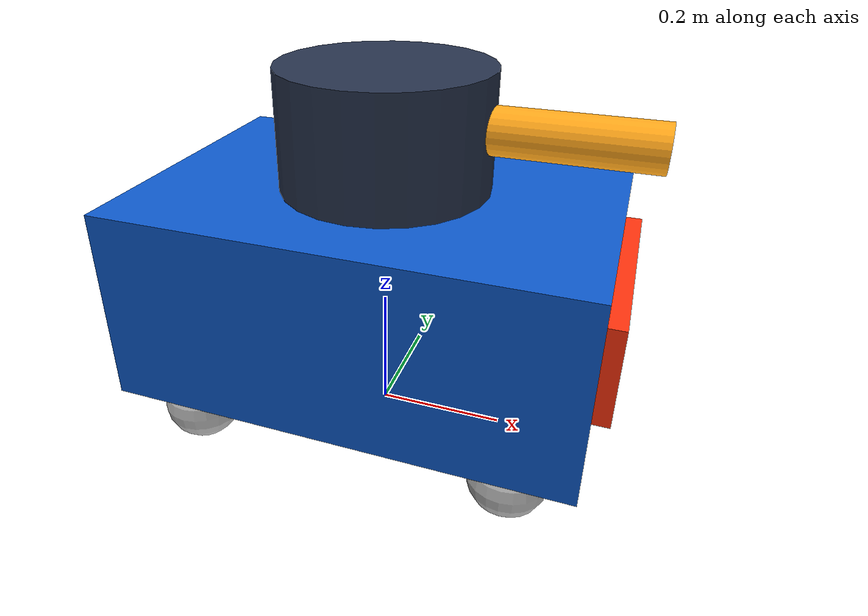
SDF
<?xml version='1.0' encoding='utf-8'?>
<sdf version="1.8">
  <!-- Generic force-driven physical chassis with actual four-line lidar observations. -->
  <model name="sentry">
    <pose>0 0 0 0 0 0</pose>
    <link name="base_link">
      <gravity>true</gravity>
      <inertial>
        <mass>15</mass>
        <inertia>
          <ixx>.35</ixx>
          <iyy>.60</iyy>
          <izz>.65</izz>
        </inertia>
        <pose>0 0 .20 0 0 0</pose>
      </inertial>
      <visual name="body">
        <pose>0 0 0.25 0 0 0</pose>
        <geometry>
          <box>
            <size>0.7 0.5 0.3</size>
          </box>
        </geometry>
        <material>
          <ambient>0.05 0.3 0.65 1</ambient>
          <diffuse>0.05 0.35 0.8 1</diffuse>
        </material>
      </visual>
      <visual name="front">
        <pose>0.36 0 0.25 0 0 0</pose>
        <geometry>
          <box>
            <size>0.03 0.35 0.15</size>
          </box>
        </geometry>
        <material>
          <ambient>1 0.2 0.05 1</ambient>
          <diffuse>1 0.2 0.05 1</diffuse>
        </material>
      </visual>
      <visual name="turret">
        <pose>0 0 0.49 0 0 0</pose>
        <geometry>
          <cylinder>
            <radius>0.16</radius>
            <length>0.18</length>
          </cylinder>
        </geometry>
        <material>
          <ambient>0.1 0.14 0.2 1</ambient>
          <diffuse>0.15 0.2 0.3 1</diffuse>
        </material>
      </visual>
      <visual name="front_pointer">
        <pose>0.24 0 0.5 0 1.5707963 0</pose>
        <geometry>
          <cylinder>
            <radius>0.035</radius>
            <length>0.3</length>
          </cylinder>
        </geometry>
        <material>
          <ambient>1 0.65 0.1 1</ambient>
          <diffuse>1 0.65 0.1 1</diffuse>
        </material>
      </visual>
      <sensor name="lidar_sensor" type="gpu_lidar">
        <pose>0 0 0.7 0 0 0</pose>
        <topic>/sentry/lidar</topic>
        <update_rate>5</update_rate>
        <always_on>true</always_on>
        <visualize>false</visualize>
        <lidar>
          <scan>
            <horizontal>
              <samples>360</samples>
              <resolution>1</resolution>
              <min_angle>-3.141592653589793</min_angle>
              <max_angle>3.141592653589793</max_angle>
            </horizontal>
            <vertical>
              <samples>4</samples>
              <resolution>1</resolution>
              <min_angle>-0.1</min_angle>
              <max_angle>0.1</max_angle>
            </vertical>
          </scan>
          <range>
            <min>0.2</min>
            <max>10</max>
            <resolution>0.01</resolution>
          </range>
        </lidar>
      </sensor>
      <collision name="chassis">
        <pose>0 0 .25 0 0 0</pose>
        <geometry>
          <box>
            <size>.7 .5 .3</size>
          </box>
        </geometry>
        <surface>
          <friction>
            <ode>
              <mu>0.02</mu>
              <mu2>0.02</mu2>
            </ode>
          </friction>
        </surface>
      </collision>
      <collision name="support_-0.25_-0.18">
        <pose>-0.25 -0.18 .06 0 0 0</pose>
        <geometry>
          <sphere>
            <radius>.06</radius>
          </sphere>
        </geometry>
        <surface>
          <friction>
            <ode>
              <mu>0.02</mu>
              <mu2>0.02</mu2>
            </ode>
          </friction>
        </surface>
      </collision>
      <visual name="support_-0.25_-0.18">
        <pose>-0.25 -0.18 .06 0 0 0</pose>
        <geometry>
          <sphere>
            <radius>.06</radius>
          </sphere>
        </geometry>
      </visual>
      <collision name="support_-0.25_0.18">
        <pose>-0.25 0.18 .06 0 0 0</pose>
        <geometry>
          <sphere>
            <radius>.06</radius>
          </sphere>
        </geometry>
        <surface>
          <friction>
            <ode>
              <mu>0.02</mu>
              <mu2>0.02</mu2>
            </ode>
          </friction>
        </surface>
      </collision>
      <visual name="support_-0.25_0.18">
        <pose>-0.25 0.18 .06 0 0 0</pose>
        <geometry>
          <sphere>
            <radius>.06</radius>
          </sphere>
        </geometry>
      </visual>
      <collision name="support_0.25_-0.18">
        <pose>0.25 -0.18 .06 0 0 0</pose>
        <geometry>
          <sphere>
            <radius>.06</radius>
          </sphere>
        </geometry>
        <surface>
          <friction>
            <ode>
              <mu>0.02</mu>
              <mu2>0.02</mu2>
            </ode>
          </friction>
        </surface>
      </collision>
      <visual name="support_0.25_-0.18">
        <pose>0.25 -0.18 .06 0 0 0</pose>
        <geometry>
          <sphere>
            <radius>.06</radius>
          </sphere>
        </geometry>
      </visual>
      <collision name="support_0.25_0.18">
        <pose>0.25 0.18 .06 0 0 0</pose>
        <geometry>
          <sphere>
            <radius>.06</radius>
          </sphere>
        </geometry>
        <surface>
          <friction>
            <ode>
              <mu>0.02</mu>
              <mu2>0.02</mu2>
            </ode>
          </friction>
        </surface>
      </collision>
      <visual name="support_0.25_0.18">
        <pose>0.25 0.18 .06 0 0 0</pose>
        <geometry>
          <sphere>
            <radius>.06</radius>
          </sphere>
        </geometry>
      </visual>
    </link>
    <plugin filename="ignition-gazebo-odometry-publisher-system" name="ignition::gazebo::systems::OdometryPublisher">
      <odom_frame>odom</odom_frame>
      <robot_base_frame>base_link</robot_base_frame>
      <dimensions>3</dimensions>
      <odom_publish_frequency>50</odom_publish_frequency>
      <odom_topic>/model/sentry/odometry</odom_topic>
    </plugin>
    <plugin filename="sentry_force_drive" name="sentry_gazebo::ForceDrive">
      <mass>15</mass>
      <yaw_inertia>.65</yaw_inertia>
      <max_force>30</max_force>
      <max_torque>2</max_torque>
    </plugin>
  </model>
</sdf>
